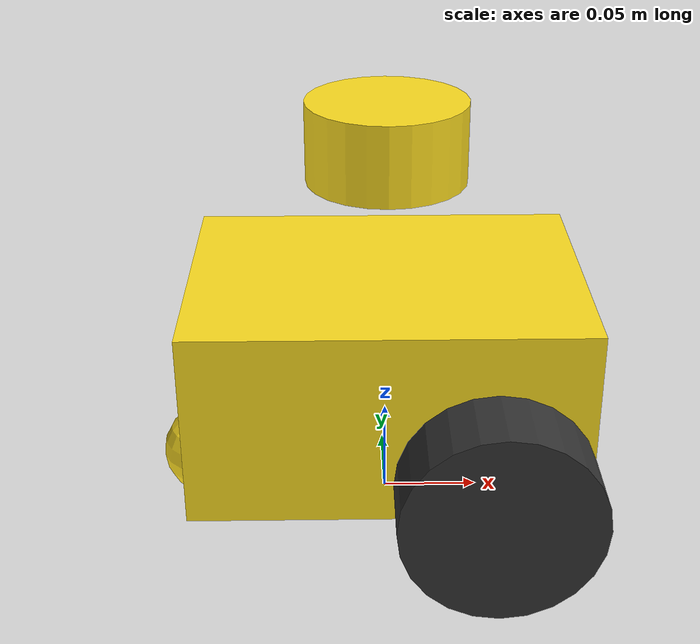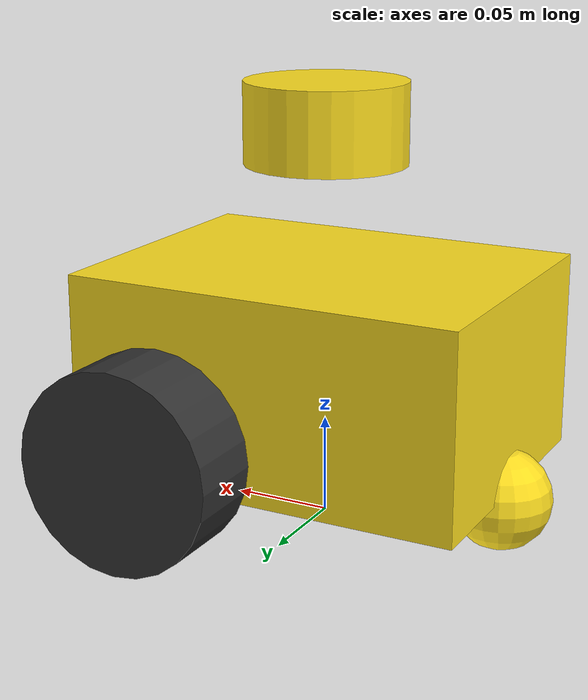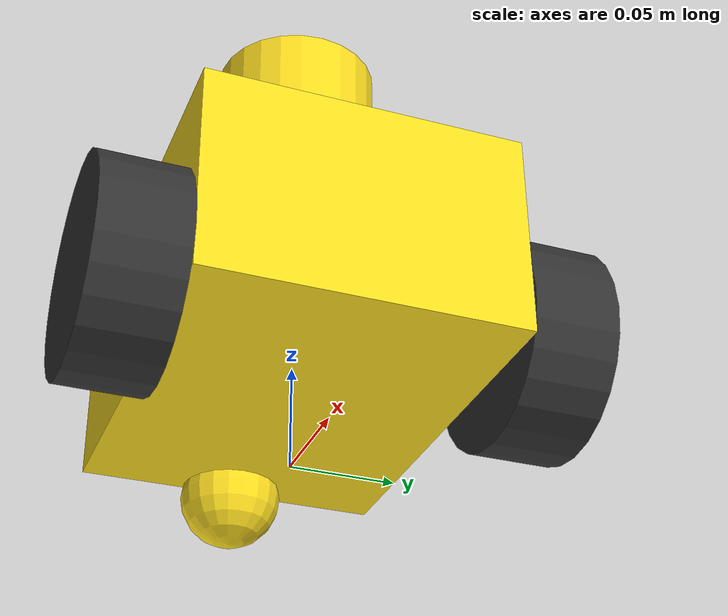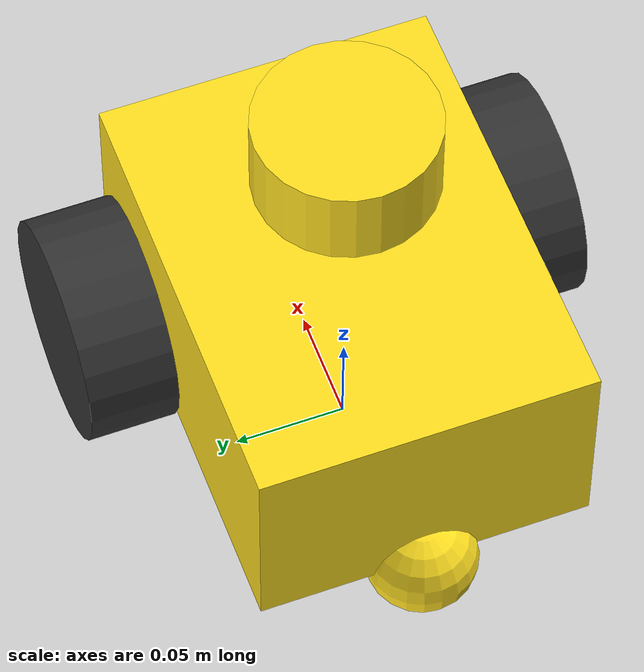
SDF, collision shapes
<?xml version='1.0'?>
<sdf version='1.9'>
  <model name='puzzlebot'>

    <link name='base_footprint'>
      <inertial>
        <pose>-0.002209 0 0.056279 0 0 0</pose>
        <mass>2.15</mass>
        <inertia>
          <ixx>0.013851</ixx><ixy>0</ixy><ixz>-0.000172</ixz>
          <iyy>0.013492</iyy><iyz>0</iyz><izz>0.020129</izz>
        </inertia>
      </inertial>

      <collision name='base_link_collision'>
        <!-- Body lifted to z=0.08 so the bottom is at z=0.03 (well above ground).
             Otherwise the chassis scrapes the floor and the wheels spin in place. -->
        <pose>0 0 0.08 0 0 0</pose>
        <geometry><box><size>0.20 0.15 0.10</size></box></geometry>
      </collision>

      <collision name='caster_collision'>
        <pose>-0.095 0 0.025 0 0 0</pose>
        <geometry><sphere><radius>0.025</radius></sphere></geometry>
        <surface><friction><ode><mu>0.0</mu><mu2>0.0</mu2></ode></friction></surface>
      </collision>

      <collision name='lidar_collision'>
        <pose>0 0 0.20 0 0 0</pose>
        <geometry><cylinder><length>0.04</length><radius>0.04</radius></cylinder></geometry>
      </collision>

      <visual name='base_link_visual'>
        <pose>0 0 0.05 0 0 0</pose>
        <geometry><mesh><uri>model://puzzlebot_description/meshes/Puzzlebot_Jetson_Lidar_Edition_Base.stl</uri></mesh></geometry>
        <material><diffuse>1 0.875 0.125 1</diffuse><ambient>1 0.875 0.125 1</ambient></material>
      </visual>

      <visual name='caster_visual'>
        <pose>-0.095 0 0.02 0 0 0</pose>
        <geometry><mesh><uri>model://puzzlebot_description/meshes/Puzzlebot_Caster_Wheel.stl</uri></mesh></geometry>
        <material><diffuse>0.5 0.5 0.5 1</diffuse><ambient>0.5 0.5 0.5 1</ambient></material>
      </visual>

      <visual name='lidar_visual'>
        <pose>0 0 0.20 0 0 0</pose>
        <geometry><cylinder><length>0.04</length><radius>0.04</radius></cylinder></geometry>
        <material><diffuse>0.3 0.3 0.3 1</diffuse><ambient>0.3 0.3 0.3 1</ambient></material>
      </visual>

      <sensor name='lidar' type='gpu_lidar'>
        <pose>0 0 0.20 0 0 0</pose>
        <update_rate>10</update_rate>
        <visualize>true</visualize>
        <lidar>
          <scan>
            <horizontal>
              <samples>360</samples><resolution>1</resolution>
              <min_angle>-3.14159</min_angle><max_angle>3.14159</max_angle>
            </horizontal>
          </scan>
          <range><min>0.15</min><max>12.0</max><resolution>0.01</resolution></range>
          <noise><type>gaussian</type><mean>0</mean><stddev>0.01</stddev></noise>
        </lidar>
        <topic>/scan</topic>
        <frame_id>lidar_link</frame_id>
      </sensor>

      <sensor name='camera' type='camera'>
        <!-- Mounted at front of chassis, ~12 cm up -->
        <pose>0.10 0 0.12 0 0.1 0</pose>
        <update_rate>30</update_rate>
        <visualize>true</visualize>
        <camera>
          <horizontal_fov>1.3962634</horizontal_fov>
          <image>
            <width>640</width>
            <height>360</height>
            <format>R8G8B8</format>
          </image>
          <clip><near>0.02</near><far>20.0</far></clip>
          <noise><type>gaussian</type><mean>0</mean><stddev>0.005</stddev></noise>
        </camera>
        <topic>/camera/image_raw</topic>
        <frame_id>camera_link</frame_id>
      </sensor>
    </link>

    <joint name='wheel_l_joint' type='revolute'>
      <pose relative_to='base_footprint'>0.052 0.095 0.05 0 0 0</pose>
      <parent>base_footprint</parent>
      <child>wheel_l_link</child>
      <axis><xyz>0 1 0</xyz><limit><lower>-inf</lower><upper>inf</upper></limit></axis>
    </joint>

    <link name='wheel_l_link'>
      <pose relative_to='wheel_l_joint'>0 0 0 0 0 0</pose>
      <inertial>
        <mass>0.2</mass>
        <inertia><ixx>0.000125</ixx><ixy>0</ixy><ixz>0</ixz>
                 <iyy>0.000125</iyy><iyz>0</iyz><izz>0.00025</izz></inertia>
      </inertial>
      <collision name='wheel_l_collision'>
        <pose>0 0 0 1.5708 0 3.14159</pose>
        <geometry><cylinder><length>0.04</length><radius>0.05</radius></cylinder></geometry>
        <surface>
          <friction><ode>
            <mu>10.0</mu><mu2>10.0</mu2>
            <slip1>0.0</slip1><slip2>0.0</slip2>
          </ode></friction>
          <contact><ode>
            <kp>1e7</kp><kd>1.0</kd>
            <max_vel>0.1</max_vel><min_depth>0.001</min_depth>
          </ode></contact>
        </surface>
      </collision>
      <visual name='wheel_l_visual'>
        <pose>0 0 0 1.5708 0 3.14159</pose>
        <geometry><mesh><uri>model://puzzlebot_description/meshes/Puzzlebot_Wheel.stl</uri></mesh></geometry>
        <material><diffuse>0.2 0.2 0.2 1</diffuse><ambient>0.2 0.2 0.2 1</ambient></material>
      </visual>
    </link>

    <joint name='wheel_r_joint' type='revolute'>
      <pose relative_to='base_footprint'>0.052 -0.095 0.05 0 0 0</pose>
      <parent>base_footprint</parent>
      <child>wheel_r_link</child>
      <axis><xyz>0 1 0</xyz><limit><lower>-inf</lower><upper>inf</upper></limit></axis>
    </joint>

    <link name='wheel_r_link'>
      <pose relative_to='wheel_r_joint'>0 0 0 0 0 0</pose>
      <inertial>
        <mass>0.2</mass>
        <inertia><ixx>0.000125</ixx><ixy>0</ixy><ixz>0</ixz>
                 <iyy>0.000125</iyy><iyz>0</iyz><izz>0.00025</izz></inertia>
      </inertial>
      <collision name='wheel_r_collision'>
        <pose>0 0 0 1.5708 0 0</pose>
        <geometry><cylinder><length>0.04</length><radius>0.05</radius></cylinder></geometry>
        <surface>
          <friction><ode>
            <mu>10.0</mu><mu2>10.0</mu2>
            <slip1>0.0</slip1><slip2>0.0</slip2>
          </ode></friction>
          <contact><ode>
            <kp>1e7</kp><kd>1.0</kd>
            <max_vel>0.1</max_vel><min_depth>0.001</min_depth>
          </ode></contact>
        </surface>
      </collision>
      <visual name='wheel_r_visual'>
        <pose>0 0 0 1.5708 0 0</pose>
        <geometry><mesh><uri>model://puzzlebot_description/meshes/Puzzlebot_Wheel.stl</uri></mesh></geometry>
        <material><diffuse>0.2 0.2 0.2 1</diffuse><ambient>0.2 0.2 0.2 1</ambient></material>
      </visual>
    </link>

    <!-- DiffDrive: Fortress plugin names (ignition-gazebo6 is the installed bridge backend) -->
    <plugin filename='libignition-gazebo-diff-drive-system.so'
            name='ignition::gazebo::systems::DiffDrive'>
      <left_joint>wheel_l_joint</left_joint>
      <right_joint>wheel_r_joint</right_joint>
      <wheel_separation>0.19</wheel_separation>
      <wheel_radius>0.05</wheel_radius>
      <max_linear_acceleration>1.0</max_linear_acceleration>
      <max_angular_acceleration>2.0</max_angular_acceleration>
      <max_linear_velocity>0.5</max_linear_velocity>
      <max_angular_velocity>2.0</max_angular_velocity>
      <!-- Stop the robot if no cmd_vel arrives within 0.5 s -->
      <cmd_vel_timeout>0.5</cmd_vel_timeout>
    </plugin>

    <!-- JointStatePublisher: Fortress plugin names -->
    <plugin filename='libignition-gazebo-joint-state-publisher-system.so'
            name='ignition::gazebo::systems::JointStatePublisher'>
      <joint_name>wheel_l_joint</joint_name>
      <joint_name>wheel_r_joint</joint_name>
    </plugin>

  </model>
</sdf>
